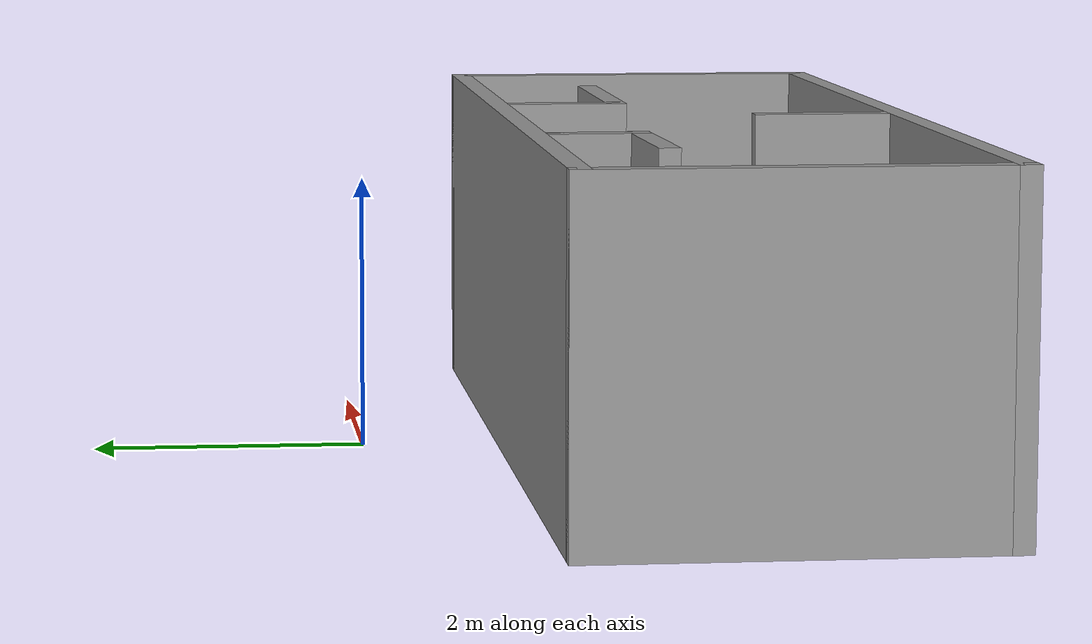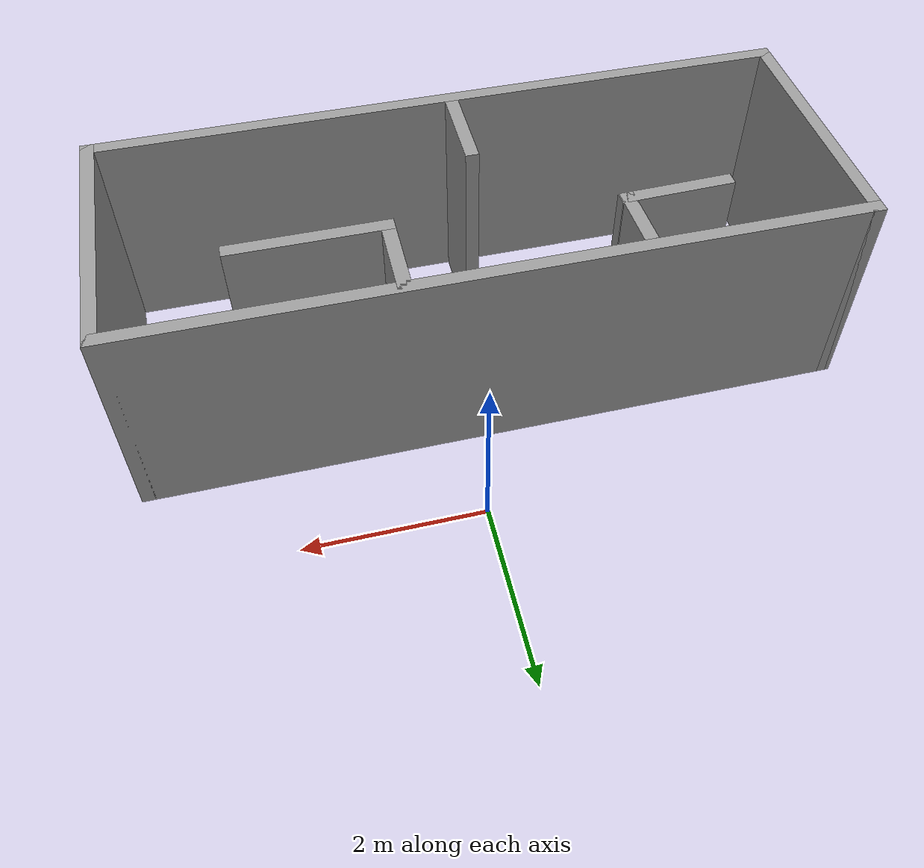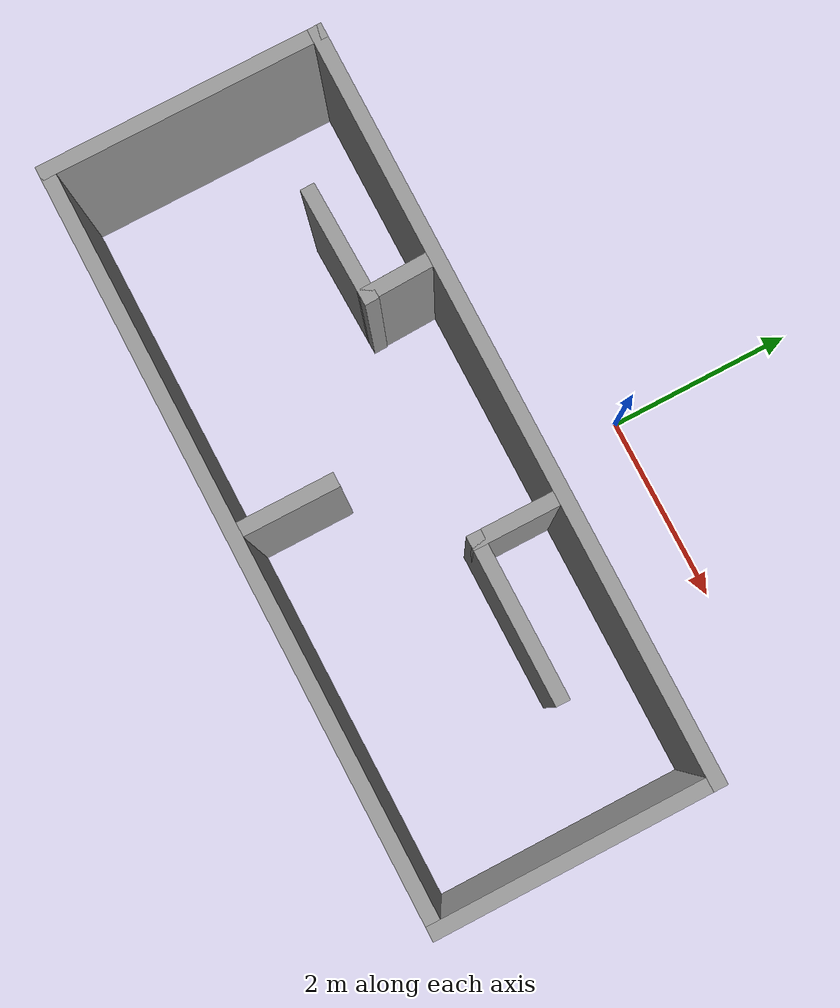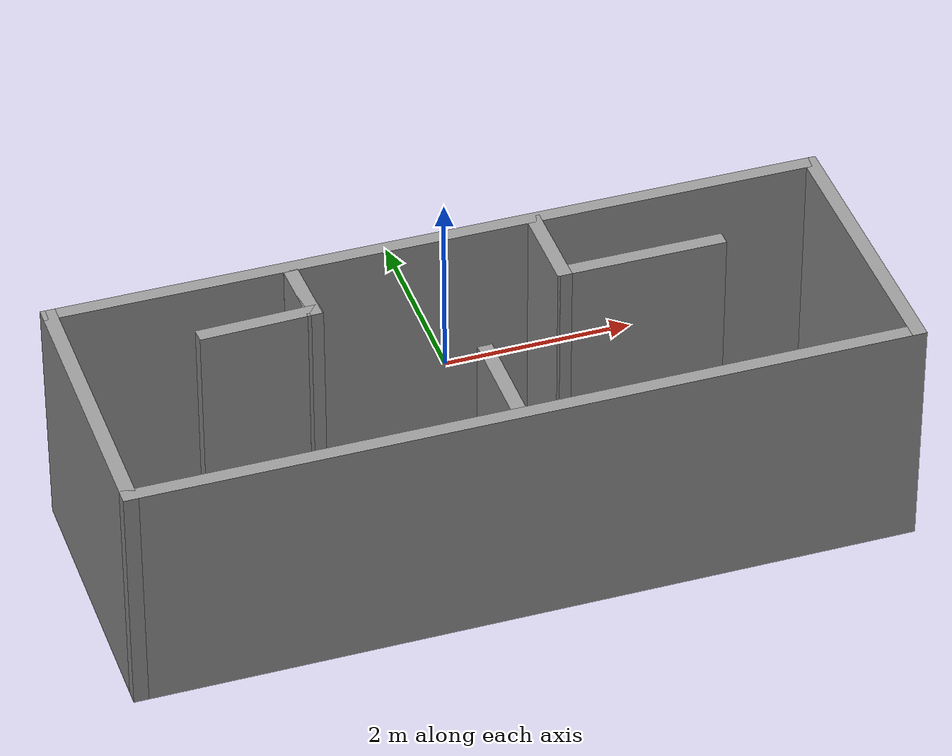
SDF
<?xml version='1.0'?>
<sdf version='1.7'>
  <model name='room'>
    <pose>-0.425 -1.9975 0 0 -0 0</pose>
    <link name='Wall_11'>
      <collision name='Wall_11_Collision'>
        <geometry>
          <box>
            <size>1 0.15 2.5</size>
          </box>
        </geometry>
        <pose>0 0 1.25 0 -0 0</pose>
      </collision>
      <visual name='Wall_11_Visual'>
        <pose>0 0 1.25 0 -0 0</pose>
        <geometry>
          <box>
            <size>1 0.15 2.5</size>
          </box>
        </geometry>
        <material>
          <script>
            <uri>file://media/materials/scripts/gazebo.material</uri>
            <name>Gazebo/Grey</name>
          </script>
          <ambient>1 1 1 1</ambient>
        </material>
        <meta>
          <layer>0</layer>
        </meta>
      </visual>
      <pose>0.995 0.4525 0 0 -0 -1.5708</pose>
    </link>
    <link name='Wall_12'>
      <collision name='Wall_12_Collision'>
        <geometry>
          <box>
            <size>1.75 0.15 2.5</size>
          </box>
        </geometry>
        <pose>0 0 1.25 0 -0 0</pose>
      </collision>
      <visual name='Wall_12_Visual'>
        <pose>0 0 1.25 0 -0 0</pose>
        <geometry>
          <box>
            <size>1.75 0.15 2.5</size>
          </box>
        </geometry>
        <material>
          <script>
            <uri>file://media/materials/scripts/gazebo.material</uri>
            <name>Gazebo/Grey</name>
          </script>
          <ambient>1 1 1 1</ambient>
        </material>
        <meta>
          <layer>0</layer>
        </meta>
      </visual>
      <pose>1.795 0.0275 0 0 -0 0</pose>
    </link>
    <link name='Wall_14'>
      <collision name='Wall_14_Collision'>
        <geometry>
          <box>
            <size>1 0.15 2.5</size>
          </box>
        </geometry>
        <pose>0 0 1.25 0 -0 0</pose>
      </collision>
      <visual name='Wall_14_Visual'>
        <pose>0 0 1.25 0 -0 0</pose>
        <geometry>
          <box>
            <size>1 0.15 2.5</size>
          </box>
        </geometry>
        <material>
          <script>
            <uri>file://media/materials/scripts/gazebo.material</uri>
            <name>Gazebo/Grey</name>
          </script>
          <ambient>1 1 1 1</ambient>
        </material>
        <meta>
          <layer>0</layer>
        </meta>
      </visual>
      <pose>-0.095 -1.3475 0 0 -0 1.5708</pose>
    </link>
    <link name='Wall_2'>
      <collision name='Wall_2_Collision'>
        <geometry>
          <box>
            <size>8 0.15 2.5</size>
          </box>
        </geometry>
        <pose>0 0 1.25 0 -0 0</pose>
      </collision>
      <visual name='Wall_2_Visual'>
        <pose>0 0 1.25 0 -0 0</pose>
        <geometry>
          <box>
            <size>8 0.15 2.5</size>
          </box>
        </geometry>
        <material>
          <script>
            <uri>file://media/materials/scripts/gazebo.material</uri>
            <name>Gazebo/Grey</name>
          </script>
          <ambient>1 1 1 1</ambient>
        </material>
        <meta>
          <layer>0</layer>
        </meta>
      </visual>
      <pose>-0 0.9275 0 0 -0 0</pose>
    </link>
    <link name='Wall_3'>
      <collision name='Wall_3_Collision'>
        <geometry>
          <box>
            <size>3 0.15 2.5</size>
          </box>
        </geometry>
        <pose>0 0 1.25 0 -0 0</pose>
      </collision>
      <visual name='Wall_3_Visual'>
        <pose>0 0 1.25 0 -0 0</pose>
        <geometry>
          <box>
            <size>3 0.15 2.5</size>
          </box>
        </geometry>
        <material>
          <script>
            <uri>file://media/materials/scripts/gazebo.material</uri>
            <name>Gazebo/Grey</name>
          </script>
          <ambient>1 1 1 1</ambient>
        </material>
        <meta>
          <layer>0</layer>
        </meta>
      </visual>
      <pose>3.925 -0.4975 0 0 -0 -1.5708</pose>
    </link>
    <link name='Wall_4'>
      <collision name='Wall_4_Collision'>
        <geometry>
          <box>
            <size>8 0.15 2.5</size>
          </box>
        </geometry>
        <pose>0 0 1.25 0 -0 0</pose>
      </collision>
      <visual name='Wall_4_Visual'>
        <pose>0 0 1.25 0 -0 0</pose>
        <geometry>
          <box>
            <size>8 0.15 2.5</size>
          </box>
        </geometry>
        <material>
          <script>
            <uri>file://media/materials/scripts/gazebo.material</uri>
            <name>Gazebo/Grey</name>
          </script>
          <ambient>1 1 1 1</ambient>
        </material>
        <meta>
          <layer>0</layer>
        </meta>
      </visual>
      <pose>-0 -1.9225 0 0 -0 3.14159</pose>
    </link>
    <link name='Wall_5'>
      <collision name='Wall_5_Collision'>
        <geometry>
          <box>
            <size>3 0.15 2.5</size>
          </box>
        </geometry>
        <pose>0 0 1.25 0 -0 0</pose>
      </collision>
      <visual name='Wall_5_Visual'>
        <pose>0 0 1.25 0 -0 0</pose>
        <geometry>
          <box>
            <size>3 0.15 2.5</size>
          </box>
        </geometry>
        <material>
          <script>
            <uri>file://media/materials/scripts/gazebo.material</uri>
            <name>Gazebo/Grey</name>
          </script>
          <ambient>1 1 1 1</ambient>
        </material>
        <meta>
          <layer>0</layer>
        </meta>
      </visual>
      <pose>-3.925 -0.4975 0 0 -0 1.5708</pose>
    </link>
    <link name='Wall_7'>
      <collision name='Wall_7_Collision'>
        <geometry>
          <box>
            <size>0.740339 0.15 2.5</size>
          </box>
        </geometry>
        <pose>0 0 1.25 0 -0 0</pose>
      </collision>
      <visual name='Wall_7_Visual'>
        <pose>0 0 1.25 0 -0 0</pose>
        <geometry>
          <box>
            <size>0.740339 0.15 2.5</size>
          </box>
        </geometry>
        <material>
          <script>
            <uri>file://media/materials/scripts/gazebo.material</uri>
            <name>Gazebo/Grey</name>
          </script>
          <ambient>1 1 1 1</ambient>
        </material>
        <meta>
          <layer>0</layer>
        </meta>
      </visual>
      <pose>-1.505 0.4925 0 0 -0 1.60468</pose>
    </link>
    <link name='Wall_8'>
      <collision name='Wall_8_Collision'>
        <geometry>
          <box>
            <size>0.730345 0.15 2.5</size>
          </box>
        </geometry>
        <pose>0 0 1.25 0 -0 0</pose>
      </collision>
      <visual name='Wall_8_Visual'>
        <pose>0 0 1.25 0 -0 0</pose>
        <geometry>
          <box>
            <size>0.730345 0.15 2.5</size>
          </box>
        </geometry>
        <material>
          <script>
            <uri>file://media/materials/scripts/gazebo.material</uri>
            <name>Gazebo/Grey</name>
          </script>
          <ambient>1 1 1 1</ambient>
        </material>
        <meta>
          <layer>0</layer>
        </meta>
      </visual>
      <pose>-1.505 0.4875 0 0 -0 -1.53633</pose>
    </link>
    <link name='Wall_9'>
      <collision name='Wall_9_Collision'>
        <geometry>
          <box>
            <size>1.25041 0.15 2.5</size>
          </box>
        </geometry>
        <pose>0 0 1.25 0 -0 0</pose>
      </collision>
      <visual name='Wall_9_Visual'>
        <pose>0 0 1.25 0 -0 0</pose>
        <geometry>
          <box>
            <size>1.25041 0.15 2.5</size>
          </box>
        </geometry>
        <material>
          <script>
            <uri>file://media/materials/scripts/gazebo.material</uri>
            <name>Gazebo/Grey</name>
          </script>
          <ambient>1 1 1 1</ambient>
        </material>
        <meta>
          <layer>0</layer>
        </meta>
      </visual>
      <pose>-2.035 0.1825 0 0 -0 -3.11433</pose>
    </link>
    <static>1</static>
  </model>
</sdf>
